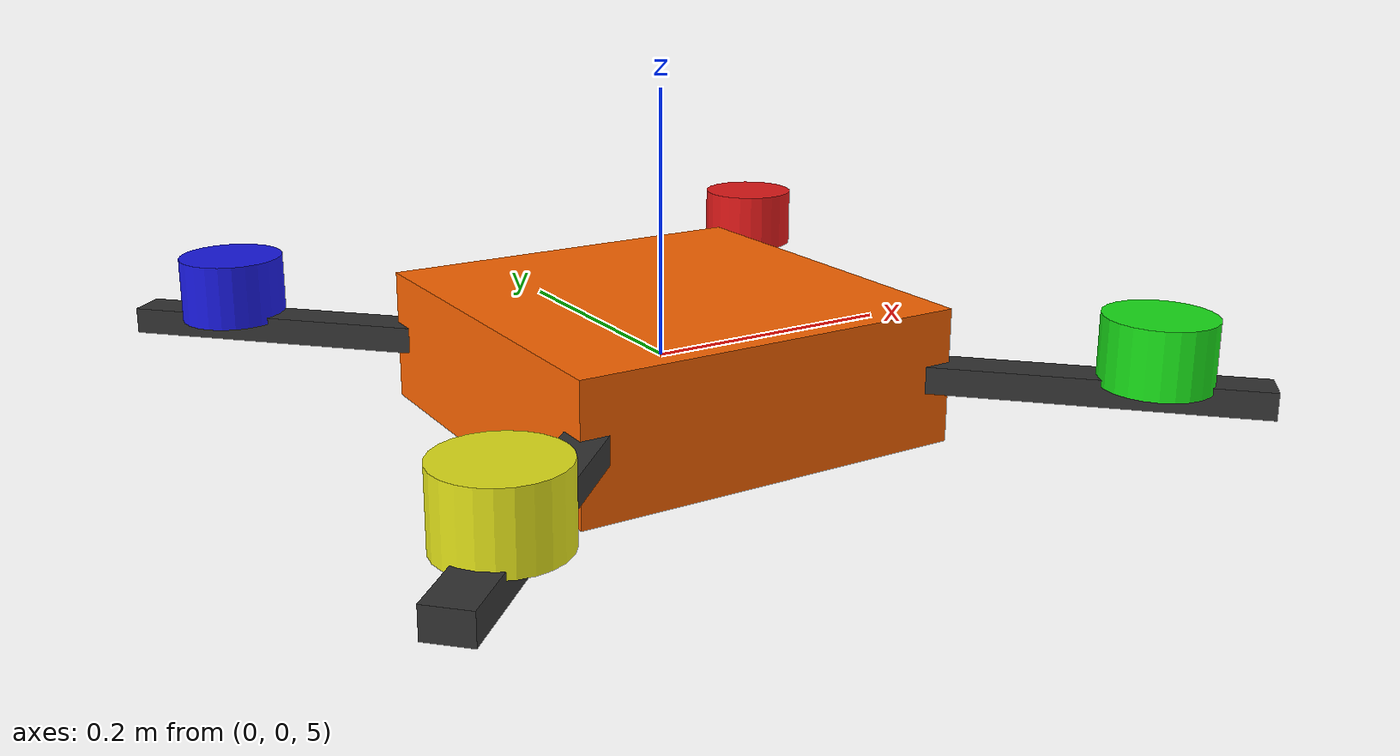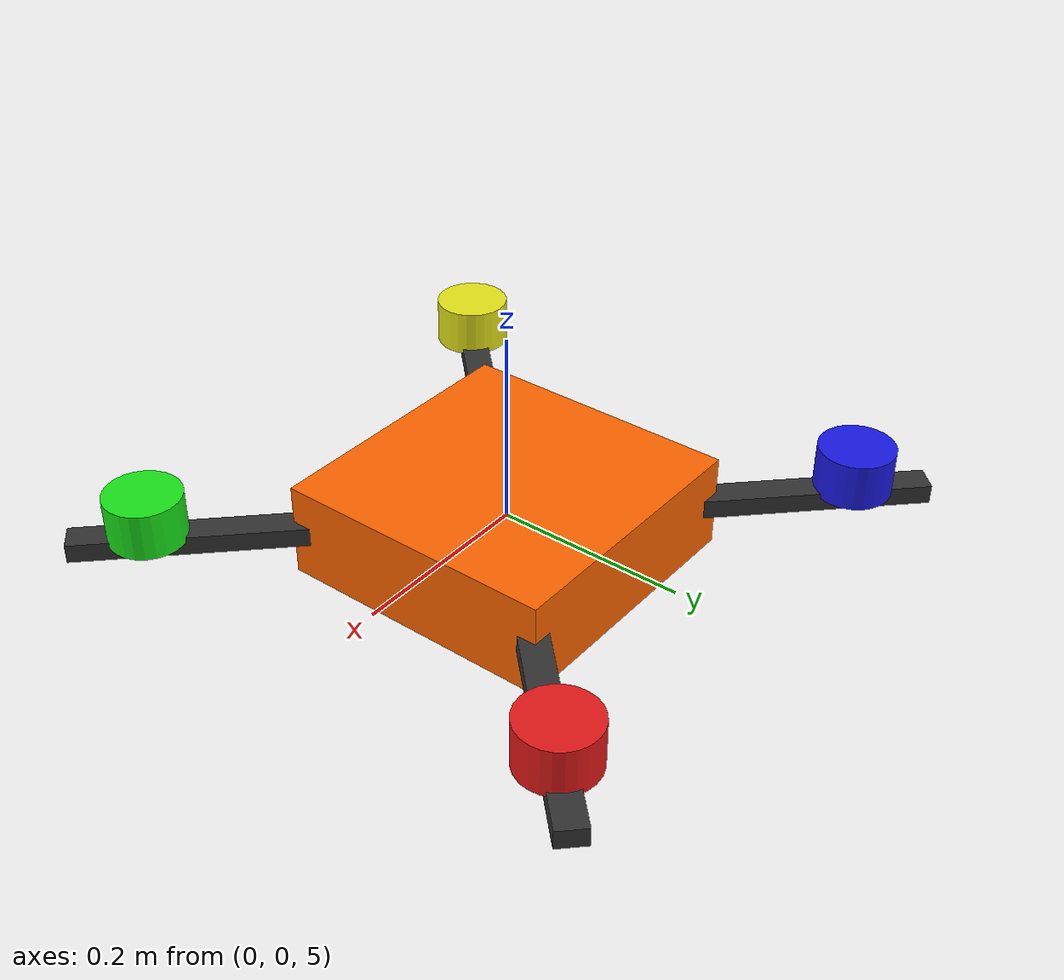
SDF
<?xml version="1.0" ?>
<sdf version="1.6">
  <world name="landing_test">

    <!-- Core system plugins -->
    <plugin filename="gz-sim-physics-system" name="gz::sim::systems::Physics"/>
    <plugin filename="gz-sim-scene-broadcaster-system" name="gz::sim::systems::SceneBroadcaster"/>
    <plugin filename="gz-sim-user-commands-system" name="gz::sim::systems::UserCommands"/>

    <!-- Physics - standard gravity -->
    <physics name="default_physics" type="dart">
      <max_step_size>0.001</max_step_size>
      <real_time_factor>1</real_time_factor>
    </physics>

    <!-- Scene -->
    <scene>
      <ambient>0.6 0.6 0.6 1</ambient>
      <background>0.4 0.6 0.9 1</background>
    </scene>

    <light type="directional" name="sun">
      <pose>0 0 100 0 0 0</pose>
      <diffuse>0.8 0.8 0.8 1</diffuse>
    </light>

    <!-- Ground plane (ship deck) -->
    <model name="deck">
      <static>true</static>
      <pose>0 0 0 0 0 0</pose>
      <link name="link">
        <collision name="collision">
          <geometry>
            <box><size>20 10 0.1</size></box>
          </geometry>
        </collision>
        <visual name="visual">
          <geometry>
            <box><size>20 10 0.1</size></box>
          </geometry>
          <material>
            <ambient>0.3 0.3 0.3 1</ambient>
            <diffuse>0.5 0.5 0.5 1</diffuse>
          </material>
        </visual>
      </link>
    </model>

    <!-- Quadcopter - starts 5m above deck -->
    <model name="quadcopter">
      <pose>0 0 5 0 0 0</pose>
      <link name="base_link">
        <inertial>
          <mass>2.0</mass>
          <inertia>
            <ixx>0.02</ixx>
            <iyy>0.02</iyy>
            <izz>0.04</izz>
          </inertia>
        </inertial>

        <collision name="collision">
          <geometry>
            <box><size>0.4 0.4 0.15</size></box>
          </geometry>
        </collision>

        <!-- Bright orange body for visibility -->
        <visual name="body">
          <geometry>
            <box><size>0.3 0.3 0.1</size></box>
          </geometry>
          <material>
            <ambient>0.9 0.3 0.0 1</ambient>
            <diffuse>1.0 0.4 0.0 1</diffuse>
          </material>
        </visual>

        <!-- Arms -->
        <visual name="arm1">
          <pose>0.2 0.2 0 0 0 0.785</pose>
          <geometry><box><size>0.3 0.03 0.02</size></box></geometry>
          <material><diffuse>0.2 0.2 0.2 1</diffuse></material>
        </visual>
        <visual name="arm2">
          <pose>0.2 -0.2 0 0 0 -0.785</pose>
          <geometry><box><size>0.3 0.03 0.02</size></box></geometry>
          <material><diffuse>0.2 0.2 0.2 1</diffuse></material>
        </visual>
        <visual name="arm3">
          <pose>-0.2 0.2 0 0 0 -0.785</pose>
          <geometry><box><size>0.3 0.03 0.02</size></box></geometry>
          <material><diffuse>0.2 0.2 0.2 1</diffuse></material>
        </visual>
        <visual name="arm4">
          <pose>-0.2 -0.2 0 0 0 0.785</pose>
          <geometry><box><size>0.3 0.03 0.02</size></box></geometry>
          <material><diffuse>0.2 0.2 0.2 1</diffuse></material>
        </visual>

        <!-- Motors (colored) -->
        <visual name="motor1">
          <pose>0.25 0.25 0.03 0 0 0</pose>
          <geometry><cylinder><radius>0.04</radius><length>0.05</length></cylinder></geometry>
          <material><diffuse>0.9 0.1 0.1 1</diffuse></material>
        </visual>
        <visual name="motor2">
          <pose>0.25 -0.25 0.03 0 0 0</pose>
          <geometry><cylinder><radius>0.04</radius><length>0.05</length></cylinder></geometry>
          <material><diffuse>0.1 0.9 0.1 1</diffuse></material>
        </visual>
        <visual name="motor3">
          <pose>-0.25 0.25 0.03 0 0 0</pose>
          <geometry><cylinder><radius>0.04</radius><length>0.05</length></cylinder></geometry>
          <material><diffuse>0.1 0.1 0.9 1</diffuse></material>
        </visual>
        <visual name="motor4">
          <pose>-0.25 -0.25 0.03 0 0 0</pose>
          <geometry><cylinder><radius>0.04</radius><length>0.05</length></cylinder></geometry>
          <material><diffuse>0.9 0.9 0.1 1</diffuse></material>
        </visual>
      </link>
    </model>

    <!-- Camera looking at scene -->
    <gui fullscreen='0'>
      <camera name='user_camera'>
        <pose>-10 -10 8 0 0.4 0.8</pose>
      </camera>
    </gui>

  </world>
</sdf>
